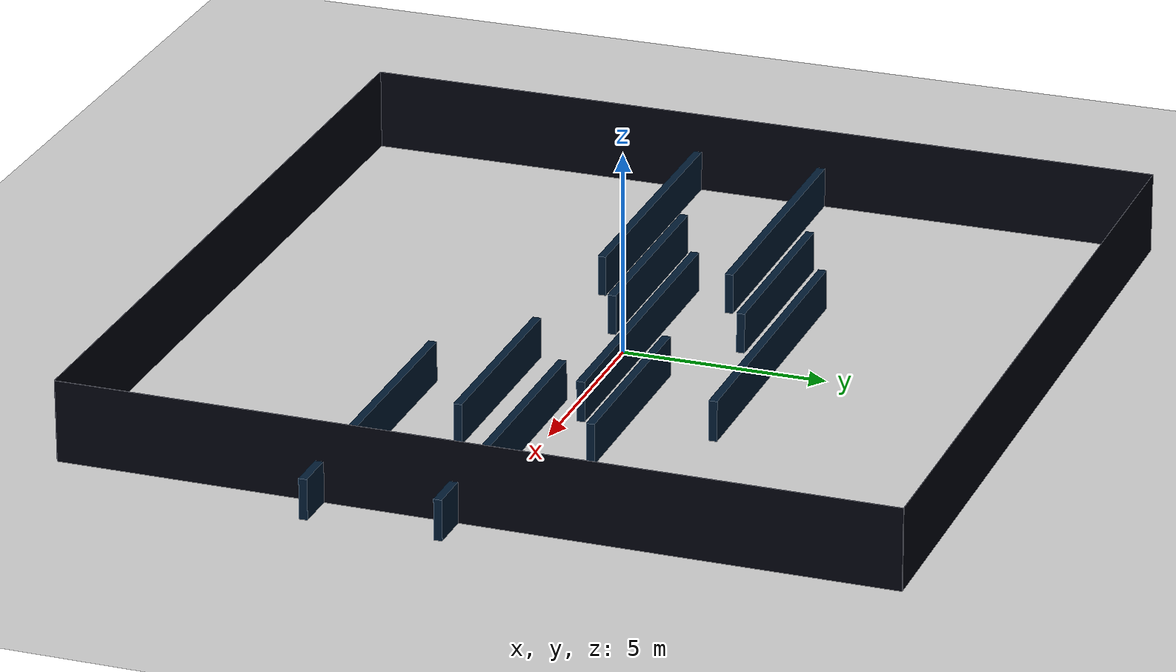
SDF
<?xml version="1.0"?>
<sdf version="1.8">
  <world name="corridor_s">
    <!-- Física -->
    <physics name="1ms" type="ode">
      <max_step_size>0.001</max_step_size>
      <real_time_factor>1.0</real_time_factor>
      <real_time_update_rate>1000</real_time_update_rate>
    </physics>

    <!-- Plugins de sistema (Fortress) -->
    <plugin name="ignition::gazebo::systems::Physics"
            filename="ignition-gazebo-physics-system"/>
    <plugin name="ignition::gazebo::systems::UserCommands"
            filename="ignition-gazebo-user-commands-system"/>
    <plugin name="ignition::gazebo::systems::SceneBroadcaster"
            filename="ignition-gazebo-scene-broadcaster-system"/>
    <plugin name="ignition::gazebo::systems::Sensors"
            filename="ignition-gazebo-sensors-system">
      <render_engine>ogre2</render_engine>
    </plugin>

    <light name='sun' type='directional'>
      <cast_shadows>1</cast_shadows>
      <pose>0 0 10 0 -0 0</pose>
      <diffuse>0.8 0.8 0.8 1</diffuse>
      <specular>0.2 0.2 0.2 1</specular>
      <attenuation>
        <range>1000</range>
        <constant>0.90000000000000002</constant>
        <linear>0.01</linear>
        <quadratic>0.001</quadratic>
      </attenuation>
      <direction>-0.5 0.1 -0.9</direction>
      <spot>
        <inner_angle>0</inner_angle>
        <outer_angle>0</outer_angle>
        <falloff>0</falloff>
      </spot>
    </light>

    <gravity>0 0 -9.8</gravity>
    <magnetic_field>6e-06 2.3e-05 -4.2e-05</magnetic_field>
    <atmosphere type='adiabatic' />
    <scene>
      <ambient>0.4 0.4 0.4 1</ambient>
      <background>0.7 0.7 0.7 1</background>
      <shadows>1</shadows>
    </scene>

    <!-- Ground -->
    <model name='ground_plane'>
      <static>1</static>
      <link name='link'>
        <collision name='collision'>
          <geometry>
            <plane>
              <normal>0 0 1</normal>
              <size>100 100</size>
            </plane>
          </geometry>
          <surface>
            <friction><ode /></friction>
            <bounce />
            <contact />
          </surface>
        </collision>
        <visual name='visual'>
          <geometry>
            <plane>
              <normal>0 0 1</normal>
              <size>100 100</size>
            </plane>
          </geometry>
          <material>
            <ambient>0.8 0.8 0.8 1</ambient>
            <diffuse>0.8 0.8 0.8 1</diffuse>
            <specular>0.8 0.8 0.8 1</specular>
          </material>
          <plugin name='__default__' filename='__default__' />
        </visual>
      </link>
      <plugin name='__default__' filename='__default__' />
      <pose>0 0 0 0 -0 0</pose>
    </model>

    <!-- Border (caja 20x20) -->
    <model name='border'>
      <pose>0 0 1 0 0 0</pose>
      <static>true</static>

      <link name='wall1'>
        <pose>-10.005 0 0 0 0 0</pose>
        <static>true</static>
        <collision name='wall1_collision'>
          <geometry><box><size>0.01 20 2</size></box></geometry>
        </collision>
        <visual name='wall1_visual'>
          <geometry><box><size>0.01 20 2</size></box></geometry>
          <material>
            <ambient>0.1 0.1 0.1 1</ambient>
            <diffuse>0 0.01 0.05 1</diffuse>
            <specular>0 0.01 0.05 1</specular>
          </material>
        </visual>
      </link>

      <link name='wall2'>
        <pose>10.005 0 0 0 0 0</pose>
        <static>true</static>
        <collision name='wall2_collision'>
          <geometry><box><size>0.01 20 2</size></box></geometry>
        </collision>
        <visual name='wall2_visual'>
          <geometry><box><size>0.01 20 2</size></box></geometry>
          <material>
            <ambient>0.1 0.1 0.1 1</ambient>
            <diffuse>0 0.01 0.05 1</diffuse>
            <specular>0 0.01 0.05 1</specular>
          </material>
        </visual>
      </link>

      <link name='wall3'>
        <pose>0 10.005 0 0 0 0</pose>
        <static>true</static>
        <collision name='wall3_collision'>
          <geometry><box><size>20 0.01 2</size></box></geometry>
        </collision>
        <visual name='wall3_visual'>
          <geometry><box><size>20 0.01 2</size></box></geometry>
          <material>
            <ambient>0.1 0.1 0.1 1</ambient>
            <diffuse>0 0.01 0.05 1</diffuse>
            <specular>0 0.01 0.05 1</specular>
          </material>
        </visual>
      </link>

      <link name='wall4'>
        <pose>0 -10.005 0 0 0 0</pose>
        <static>true</static>
        <collision name='wall4_collision'>
          <geometry><box><size>20 0.01 2</size></box></geometry>
        </collision>
        <visual name='wall4_visual'>
          <geometry><box><size>20 0.01 2</size></box></geometry>
          <material>
            <ambient>0.1 0.1 0.1 1</ambient>
            <diffuse>0 0.01 0.05 1</diffuse>
            <specular>0 0.01 0.05 1</specular>
          </material>
        </visual>
      </link>
    </model>

    <!-- Corredor en S (ancho libre = 3.0m) -->
    <!-- Hecho con 3 tramos: -->
    <!--   A) tramo izquierdo centrado en y=0 (x=-7) -->
    <!--   B) tramo medio centrado en y=+2 (x=0) -->
    <!--   C) tramo derecho centrado en y=-2 (x=+7) -->
    <!-- Nota: el "pasillo" es el espacio entre las dos paredes de cada tramo. -->
    <model name='corridor_s_walls'>
      <pose>0 0 0.5 0 0 0</pose>
      <static>true</static>

      <!-- ===== Tramo A (izquierda), centro y=0, x=-7 ===== -->
      <link name='A_top'>
        <pose>-7  1.6 0 0 0 0</pose>
        <static>true</static>
        <collision name='A_top_collision'>
          <geometry><box><size>8 0.20 1</size></box></geometry>
        </collision>
        <visual name='A_top_visual'>
          <geometry><box><size>8 0.20 1</size></box></geometry>
          <material>
            <ambient>0.1 0.1 0.1 1</ambient>
            <diffuse>0 0.1 0.2 1</diffuse>
            <specular>0 0.01 0.05 1</specular>
          </material>
        </visual>
      </link>

      <link name='A_bottom'>
        <pose>-7 -1.6 0 0 0 0</pose>
        <static>true</static>
        <collision name='A_bottom_collision'>
          <geometry><box><size>8 0.20 1</size></box></geometry>
        </collision>
        <visual name='A_bottom_visual'>
          <geometry><box><size>8 0.20 1</size></box></geometry>
          <material>
            <ambient>0.1 0.1 0.1 1</ambient>
            <diffuse>0 0.1 0.2 1</diffuse>
            <specular>0 0.01 0.05 1</specular>
          </material>
        </visual>
      </link>

      <!-- ===== Tramo B (medio), centro y=+2, x=0 ===== -->
      <link name='B_top'>
        <pose>0  3.6 0 0 0 0</pose>
        <static>true</static>
        <collision name='B_top_collision'>
          <geometry><box><size>8 0.20 1</size></box></geometry>
        </collision>
        <visual name='B_top_visual'>
          <geometry><box><size>8 0.20 1</size></box></geometry>
          <material>
            <ambient>0.1 0.1 0.1 1</ambient>
            <diffuse>0 0.1 0.2 1</diffuse>
            <specular>0 0.01 0.05 1</specular>
          </material>
        </visual>
      </link>

      <link name='B_bottom'>
        <pose>0  0.4 0 0 0 0</pose>
        <static>true</static>
        <collision name='B_bottom_collision'>
          <geometry><box><size>8 0.20 1</size></box></geometry>
        </collision>
        <visual name='B_bottom_visual'>
          <geometry><box><size>8 0.20 1</size></box></geometry>
          <material>
            <ambient>0.1 0.1 0.1 1</ambient>
            <diffuse>0 0.1 0.2 1</diffuse>
            <specular>0 0.01 0.05 1</specular>
          </material>
        </visual>
      </link>

      <!-- ===== Tramo C (derecha), centro y=-2, x=+7 ===== -->
      <link name='C_top'>
        <pose>7 -0.4 0 0 0 0</pose>
        <static>true</static>
        <collision name='C_top_collision'>
          <geometry><box><size>8 0.20 1</size></box></geometry>
        </collision>
        <visual name='C_top_visual'>
          <geometry><box><size>8 0.20 1</size></box></geometry>
          <material>
            <ambient>0.1 0.1 0.1 1</ambient>
            <diffuse>0 0.1 0.2 1</diffuse>
            <specular>0 0.01 0.05 1</specular>
          </material>
        </visual>
      </link>

      <link name='C_bottom'>
        <pose>7 -3.6 0 0 0 0</pose>
        <static>true</static>
        <collision name='C_bottom_collision'>
          <geometry><box><size>8 0.20 1</size></box></geometry>
        </collision>
        <visual name='C_bottom_visual'>
          <geometry><box><size>8 0.20 1</size></box></geometry>
          <material>
            <ambient>0.1 0.1 0.1 1</ambient>
            <diffuse>0 0.1 0.2 1</diffuse>
            <specular>0 0.01 0.05 1</specular>
          </material>
        </visual>
      </link>

      <!-- “Puentes” diagonales para conectar tramos y formar la S sin huecos enormes -->
      <!-- Conectan A->B y B->C usando paredes finas tipo “funnel”. -->
      <!-- Ajustados para dejar paso >= 3m aprox en la zona de unión. -->

      <!-- Conexión A->B: dos diagonales -->
      <link name='AB_diag_top'>
        <pose>-3.5 2.6 0 0 0 0</pose>
        <static>true</static>
        <collision name='AB_diag_top_collision'>
          <!-- barra diagonal aproximada (longitud 5.2) -->
          <geometry><box><size>5.2 0.20 1</size></box></geometry>
        </collision>
        <visual name='AB_diag_top_visual'>
          <geometry><box><size>5.2 0.20 1</size></box></geometry>
          <material>
            <ambient>0.1 0.1 0.1 1</ambient>
            <diffuse>0 0.1 0.2 1</diffuse>
            <specular>0 0.01 0.05 1</specular>
          </material>
        </visual>
        <!-- rotación z ~ +22° -->
        <pose>-3.5 2.6 0 0 0 0.38</pose>
      </link>

      <link name='AB_diag_bottom'>
        <pose>-3.5 -0.6 0 0 0 0</pose>
        <static>true</static>
        <collision name='AB_diag_bottom_collision'>
          <geometry><box><size>5.2 0.20 1</size></box></geometry>
        </collision>
        <visual name='AB_diag_bottom_visual'>
          <geometry><box><size>5.2 0.20 1</size></box></geometry>
          <material>
            <ambient>0.1 0.1 0.1 1</ambient>
            <diffuse>0 0.1 0.2 1</diffuse>
            <specular>0 0.01 0.05 1</specular>
          </material>
        </visual>
        <!-- rotación z ~ +22° -->
        <pose>-3.5 -0.6 0 0 0 0.38</pose>
      </link>

      <!-- Conexión B->C: dos diagonales -->
      <link name='BC_diag_top'>
        <pose>3.5 1.4 0 0 0 0</pose>
        <static>true</static>
        <collision name='BC_diag_top_collision'>
          <geometry><box><size>5.2 0.20 1</size></box></geometry>
        </collision>
        <visual name='BC_diag_top_visual'>
          <geometry><box><size>5.2 0.20 1</size></box></geometry>
          <material>
            <ambient>0.1 0.1 0.1 1</ambient>
            <diffuse>0 0.1 0.2 1</diffuse>
            <specular>0 0.01 0.05 1</specular>
          </material>
        </visual>
        <!-- rotación z ~ -22° -->
        <pose>3.5 1.4 0 0 0 -0.38</pose>
      </link>

      <link name='BC_diag_bottom'>
        <pose>3.5 -1.8 0 0 0 0</pose>
        <static>true</static>
        <collision name='BC_diag_bottom_collision'>
          <geometry><box><size>5.2 0.20 1</size></box></geometry>
        </collision>
        <visual name='BC_diag_bottom_visual'>
          <geometry><box><size>5.2 0.20 1</size></box></geometry>
          <material>
            <ambient>0.1 0.1 0.1 1</ambient>
            <diffuse>0 0.1 0.2 1</diffuse>
            <specular>0 0.01 0.05 1</specular>
          </material>
        </visual>
        <!-- rotación z ~ -22° -->
        <pose>3.5 -1.8 0 0 0 -0.38</pose>
      </link>

    </model>
  </world>
</sdf>
